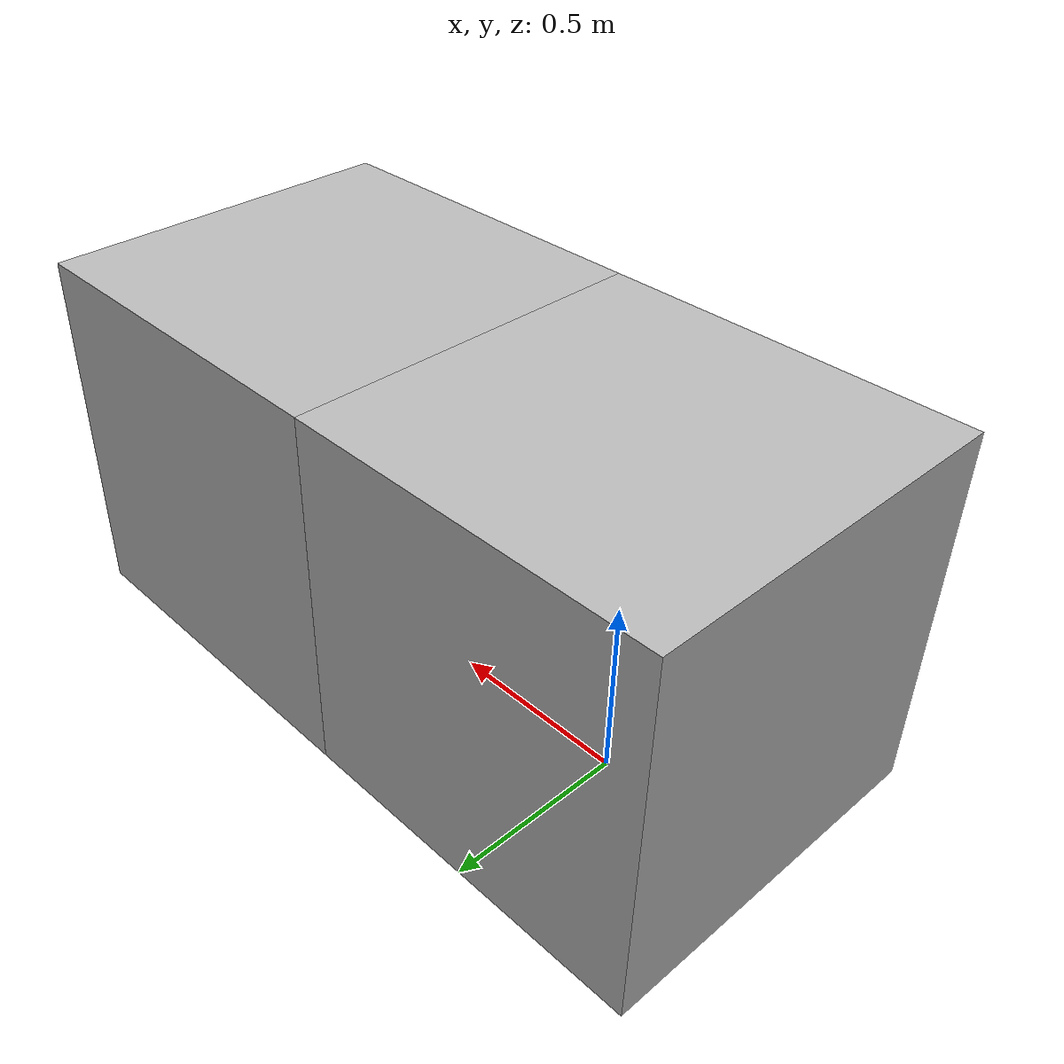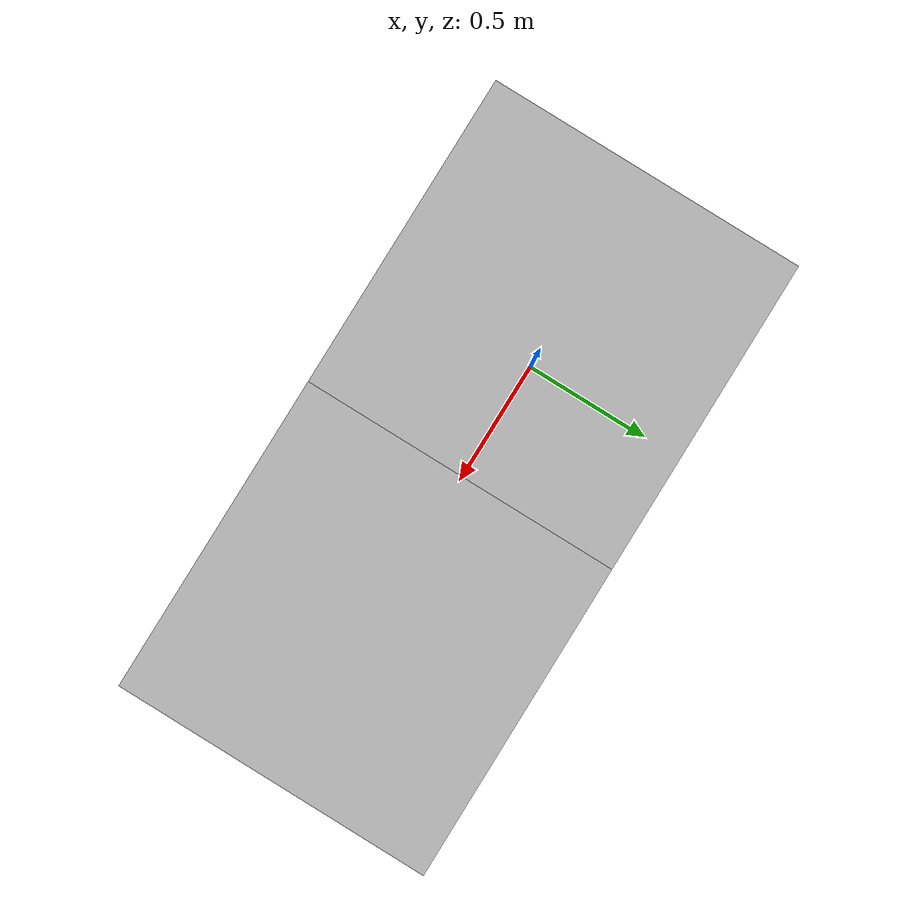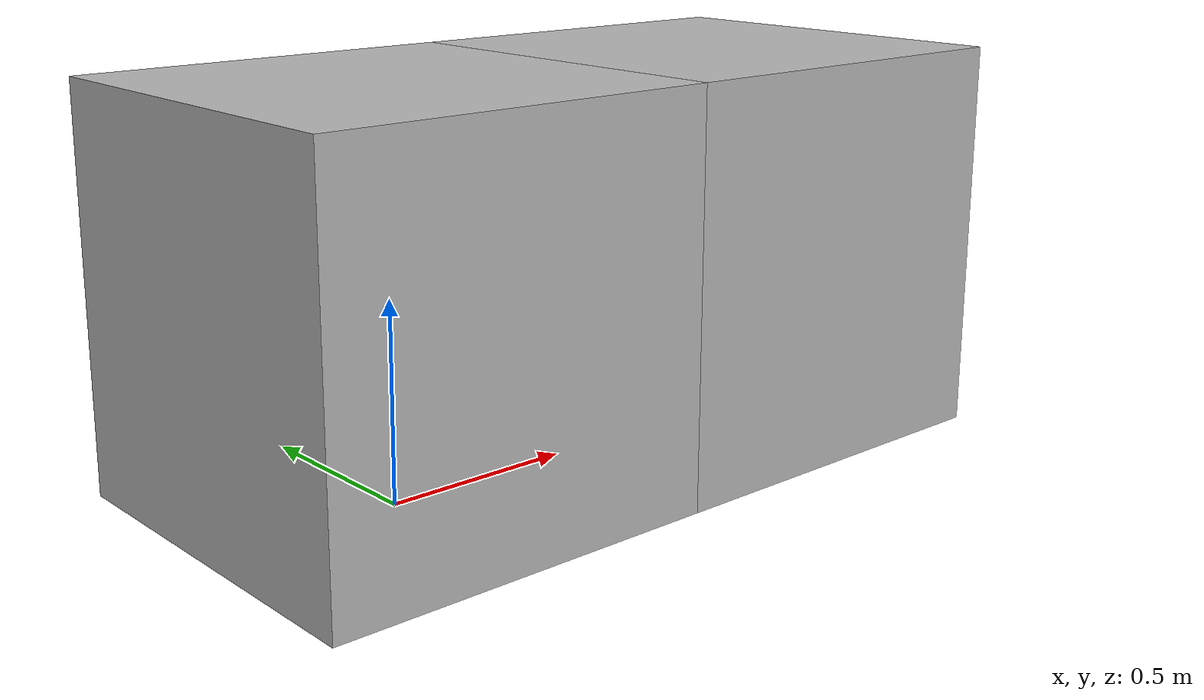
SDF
<?xml version="1.0" ?>
<sdf version="1.6">
  <world name="batteries">
    <physics name="1ms" type="ode">
      <max_step_size>0.001</max_step_size>
      <real_time_factor>0</real_time_factor>
    </physics>
    <plugin
      filename="ignition-gazebo-physics-system"
      name="gz::sim::systems::Physics">
    </plugin>
    <plugin
      filename="ignition-gazebo-scene-broadcaster-system"
      name="gz::sim::systems::SceneBroadcaster">
    </plugin>

    <light type="directional" name="sun">
      <cast_shadows>true</cast_shadows>
      <pose>0 0 10 0 0 0</pose>
      <diffuse>1 1 1 1</diffuse>
      <specular>0.5 0.5 0.5 1</specular>
      <attenuation>
        <range>1000</range>
        <constant>0.9</constant>
        <linear>0.01</linear>
        <quadratic>0.001</quadratic>
      </attenuation>
      <direction>-0.5 0.1 -0.9</direction>
    </light>

    <model name="linear_battery_demo_model">
      <pose>0 0 0 0 0 0</pose>
      <static>false</static>
      <link name="body">
        <pose>0 0 0.5 0 0 0</pose>
        <visual name="visual">
          <geometry>
            <box>
              <size>1 1 1</size>
            </box>
          </geometry>
        </visual>
      </link>

      <plugin filename="ignition-gazebo-linearbatteryplugin-system"
        name="gz::sim::systems::LinearBatteryPlugin">
        <battery_name>linear_battery</battery_name>
        <voltage>12.592</voltage>
        <open_circuit_voltage_constant_coef>12.694</open_circuit_voltage_constant_coef>
        <open_circuit_voltage_linear_coef>-3.1424</open_circuit_voltage_linear_coef>
        <initial_charge>1.1665</initial_charge>
        <capacity>1.2009</capacity>
        <resistance>0.061523</resistance>
        <smooth_current_tau>1.9499</smooth_current_tau>
        <!-- Consumer-specific -->
        <power_load>500</power_load>  <!-- high load to quickly drain battery -->
        <start_draining>true</start_draining>
      </plugin>

    </model>

    <model name="linear_battery_demo_model_with_topics">
      <pose>1 0 0 0 0 0</pose>
      <static>false</static>
      <link name="body">
        <pose>0 0 0.5 0 0 0</pose>
        <visual name="visual">
          <geometry>
            <box>
              <size>1 1 1</size>
            </box>
          </geometry>
        </visual>
      </link>

      <plugin filename="ignition-gazebo-linearbatteryplugin-system"
        name="ignition::gazebo::systems::LinearBatteryPlugin">
        <battery_name>linear_battery_topics</battery_name>
        <voltage>12.592</voltage>
        <open_circuit_voltage_constant_coef>12.694</open_circuit_voltage_constant_coef>
        <open_circuit_voltage_linear_coef>-3.1424</open_circuit_voltage_linear_coef>
        <initial_charge>1.2009</initial_charge>
        <capacity>1.2009</capacity>
        <resistance>0.061523</resistance>
        <smooth_current_tau>1.9499</smooth_current_tau>
        <!-- Consumer-specific -->
        <power_load>500</power_load>  <!-- high load to quickly drain battery -->
        <power_draining_topic>/battery/discharge</power_draining_topic>
        <stop_power_draining_topic>/battery/stop_discharge</stop_power_draining_topic>
      </plugin>

    </model>

  </world>
</sdf>
